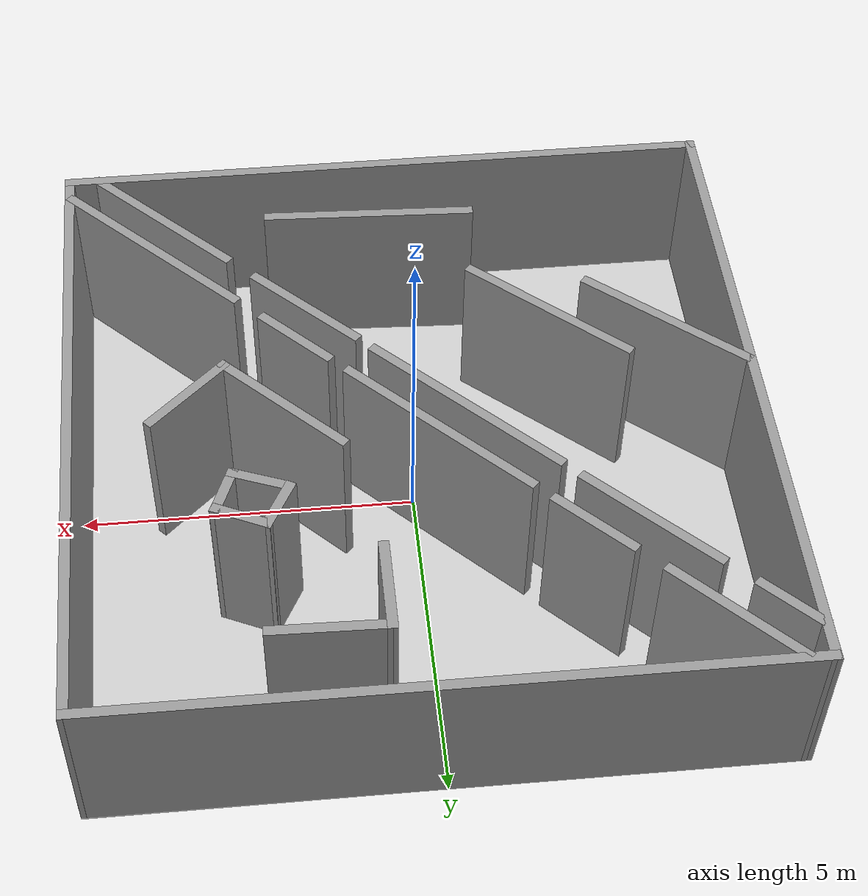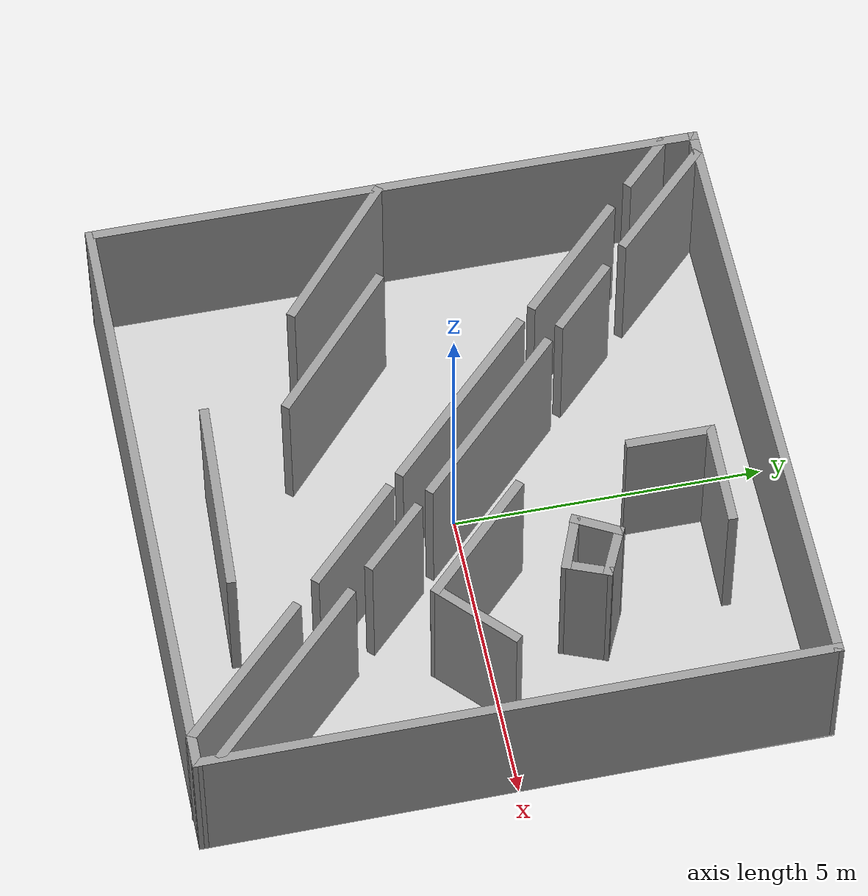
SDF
<sdf version="1.7">
 <world name="default">
  <light name="sun" type="directional">
   <pose>0 0 10 0 -0 0</pose>
   <diffuse>0.8 0.8 0.8 1</diffuse>
   <specular>0.2 0.2 0.2 1</specular>
   <attenuation>
    <range>1000</range>
    <constant>0.9</constant>
    <linear>0.01</linear>
    <quadratic>0.001</quadratic>
   </attenuation>
   <direction>-0.5 0.1 -0.9</direction>
   <spot><inner_angle>0</inner_angle><outer_angle>0</outer_angle><falloff>0</falloff></spot>
  </light>
  <gravity>0 0 -9.8</gravity>
  <magnetic_field>6e-06 2.3e-05 -4.2e-05</magnetic_field>
  <atmosphere type="adiabatic"/>
  <physics type="ode">
   <max_step_size>0.001</max_step_size>
   <real_time_factor>1</real_time_factor>
   <real_time_update_rate>1000</real_time_update_rate>
  </physics>
  <scene><ambient>0.4 0.4 0.4 1</ambient><background>0.7 0.7 0.7 1</background><shadows>1</shadows></scene>
  <spherical_coordinates>
   <surface_model>EARTH_WGS84</surface_model>
   <latitude_deg>0</latitude_deg>
   <longitude_deg>0</longitude_deg>
   <elevation>0</elevation>
   <heading_deg>0</heading_deg>
  </spherical_coordinates>
  <model name="map_2">
   <static>1</static>
   <link name="link">
    <collision name="collision">
     <geometry><plane><normal>0 0 1</normal><size>10 10</size></plane></geometry>
     <surface><friction><ode><mu>100</mu><mu2>50</mu2></ode></friction></surface>
    </collision>
    <visual name="visual">
     <cast_shadows>0</cast_shadows>
     <geometry><plane><normal>0 0 1</normal><size>10 10</size></plane></geometry>
     <material>
      <script>
       <uri>model://map_2/materials/scripts</uri>
       <uri>model://map_2/materials/textures/</uri>
       <name>Map2/Image</name>
      </script>
     </material>
    </visual>
   </link>
  </model>
  <model name="Untitled">
   <link name="Wall_0">
    <collision name="Wall_0_Collision">
     <geometry><box><size>10.0253 0.15 2.5</size></box></geometry>
     <pose>0 0 1.25 0 -0 0</pose>
    </collision>
    <visual name="Wall_0_Visual">
     <pose>0 0 1.25 0 -0 0</pose>
     <geometry><box><size>10.0253 0.15 2.5</size></box></geometry>
     <material>
      <script><uri>file://media/materials/scripts/gazebo.material</uri><name>Gazebo/Grey</name></script>
      <ambient>1 1 1 1</ambient>
     </material>
     <meta><layer>0</layer></meta>
    </visual>
    <pose>-0.018666 4.93416 0 0 -0 -0.002297</pose>
   </link>
   <link name="Wall_1">
    <collision name="Wall_1_Collision">
     <geometry><box><size>10.0027 0.15 2.5</size></box></geometry>
     <pose>0 0 1.25 0 -0 0</pose>
    </collision>
    <visual name="Wall_1_Visual">
     <pose>0 0 1.25 0 -0 0</pose>
     <geometry><box><size>10.0027 0.15 2.5</size></box></geometry>
     <material>
      <script><uri>file://media/materials/scripts/gazebo.material</uri><name>Gazebo/Grey</name></script>
      <ambient>1 1 1 1</ambient>
     </material>
     <meta><layer>0</layer></meta>
    </visual>
    <pose>4.94164 -0.003457 0 0 -0 -1.56619</pose>
   </link>
   <link name="Wall_11">
    <collision name="Wall_11_Collision">
     <geometry><box><size>1.42257 0.15 2.5</size></box></geometry>
     <pose>0 0 1.25 0 -0 0</pose>
    </collision>
    <visual name="Wall_11_Visual">
     <pose>0 0 1.25 0 -0 0</pose>
     <geometry><box><size>1.42257 0.15 2.5</size></box></geometry>
     <material>
      <script><uri>file://media/materials/scripts/gazebo.material</uri><name>Gazebo/Grey</name></script>
      <ambient>1 1 1 1</ambient>
     </material>
     <meta><layer>0</layer></meta>
    </visual>
    <pose>-2.21148 2.52584 0 0 -0 -0.776995</pose>
   </link>
   <link name="Wall_13">
    <collision name="Wall_13_Collision">
     <geometry><box><size>3.43297 0.15 2.5</size></box></geometry>
     <pose>0 0 1.25 0 -0 0</pose>
    </collision>
    <visual name="Wall_13_Visual">
     <pose>0 0 1.25 0 -0 0</pose>
     <geometry><box><size>3.43297 0.15 2.5</size></box></geometry>
     <material>
      <script><uri>file://media/materials/scripts/gazebo.material</uri><name>Gazebo/Grey</name></script>
      <ambient>1 1 1 1</ambient>
     </material>
     <meta><layer>0</layer></meta>
    </visual>
    <pose>-0.287097 0.616581 0 0 -0 -0.778884</pose>
   </link>
   <link name="Wall_15">
    <collision name="Wall_15_Collision">
     <geometry><box><size>3.49182 0.15 2.5</size></box></geometry>
     <pose>0 0 1.25 0 -0 0</pose>
    </collision>
    <visual name="Wall_15_Visual">
     <pose>0 0 1.25 0 -0 0</pose>
     <geometry><box><size>3.49182 0.15 2.5</size></box></geometry>
     <material>
      <script><uri>file://media/materials/scripts/gazebo.material</uri><name>Gazebo/Grey</name></script>
      <ambient>1 1 1 1</ambient>
     </material>
     <meta><layer>0</layer></meta>
    </visual>
    <pose>-0.710538 0.242289 0 0 -0 -0.777398</pose>
   </link>
   <link name="Wall_17">
    <collision name="Wall_17_Collision">
     <geometry><box><size>1.39044 0.15 2.5</size></box></geometry>
     <pose>0 0 1.25 0 -0 0</pose>
    </collision>
    <visual name="Wall_17_Visual">
     <pose>0 0 1.25 0 -0 0</pose>
     <geometry><box><size>1.39044 0.15 2.5</size></box></geometry>
     <material>
      <script><uri>file://media/materials/scripts/gazebo.material</uri><name>Gazebo/Grey</name></script>
      <ambient>1 1 1 1</ambient>
     </material>
     <meta><layer>0</layer></meta>
    </visual>
    <pose>1.62217 -1.27756 0 0 -0 -0.785398</pose>
   </link>
   <link name="Wall_19">
    <collision name="Wall_19_Collision">
     <geometry><box><size>2.08564 0.15 2.5</size></box></geometry>
     <pose>0 0 1.25 0 -0 0</pose>
    </collision>
    <visual name="Wall_19_Visual">
     <pose>0 0 1.25 0 -0 0</pose>
     <geometry><box><size>2.08564 0.15 2.5</size></box></geometry>
     <material>
      <script><uri>file://media/materials/scripts/gazebo.material</uri><name>Gazebo/Grey</name></script>
      <ambient>1 1 1 1</ambient>
     </material>
     <meta><layer>0</layer></meta>
    </visual>
    <pose>1.44447 -1.88626 0 0 -0 -0.774349</pose>
   </link>
   <link name="Wall_2">
    <collision name="Wall_2_Collision">
     <geometry><box><size>10.0479 0.15 2.5</size></box></geometry>
     <pose>0 0 1.25 0 -0 0</pose>
    </collision>
    <visual name="Wall_2_Visual">
     <pose>0 0 1.25 0 -0 0</pose>
     <geometry><box><size>10.0479 0.15 2.5</size></box></geometry>
     <material>
      <script><uri>file://media/materials/scripts/gazebo.material</uri><name>Gazebo/Grey</name></script>
      <ambient>1 1 1 1</ambient>
     </material>
     <meta><layer>0</layer></meta>
    </visual>
    <pose>0.01536 -4.92595 0 0 -0 3.14083</pose>
   </link>
   <link name="Wall_21">
    <collision name="Wall_21_Collision">
     <geometry><box><size>3.55591 0.15 2.5</size></box></geometry>
     <pose>0 0 1.25 0 -0 0</pose>
    </collision>
    <visual name="Wall_21_Visual">
     <pose>0 0 1.25 0 -0 0</pose>
     <geometry><box><size>3.55591 0.15 2.5</size></box></geometry>
     <material>
      <script><uri>file://media/materials/scripts/gazebo.material</uri><name>Gazebo/Grey</name></script>
      <ambient>1 1 1 1</ambient>
     </material>
     <meta><layer>0</layer></meta>
    </visual>
    <pose>3.70156 -3.33805 0 0 -0 -0.780689</pose>
   </link>
   <link name="Wall_23">
    <collision name="Wall_23_Collision">
     <geometry><box><size>2.86617 0.15 2.5</size></box></geometry>
     <pose>0 0 1.25 0 -0 0</pose>
    </collision>
    <visual name="Wall_23_Visual">
     <pose>0 0 1.25 0 -0 0</pose>
     <geometry><box><size>2.86617 0.15 2.5</size></box></geometry>
     <material>
      <script><uri>file://media/materials/scripts/gazebo.material</uri><name>Gazebo/Grey</name></script>
      <ambient>1 1 1 1</ambient>
     </material>
     <meta><layer>0</layer></meta>
    </visual>
    <pose>3.53899 -3.95809 0 0 -0 -0.781461</pose>
   </link>
   <link name="Wall_25">
    <collision name="Wall_25_Collision">
     <geometry><box><size>2.87053 0.15 2.5</size></box></geometry>
     <pose>0 0 1.25 0 -0 0</pose>
    </collision>
    <visual name="Wall_25_Visual">
     <pose>0 0 1.25 0 -0 0</pose>
     <geometry><box><size>2.87053 0.15 2.5</size></box></geometry>
     <material>
      <script><uri>file://media/materials/scripts/gazebo.material</uri><name>Gazebo/Grey</name></script>
      <ambient>1 1 1 1</ambient>
     </material>
     <meta><layer>0</layer></meta>
    </visual>
    <pose>-3.8561 -1.14901 0 0 -0 2.44081</pose>
   </link>
   <link name="Wall_27">
    <collision name="Wall_27_Collision">
     <geometry><box><size>2.92489 0.15 2.5</size></box></geometry>
     <pose>0 0 1.25 0 -0 0</pose>
    </collision>
    <visual name="Wall_27_Visual">
     <pose>0 0 1.25 0 -0 0</pose>
     <geometry><box><size>2.92489 0.15 2.5</size></box></geometry>
     <material>
      <script><uri>file://media/materials/scripts/gazebo.material</uri><name>Gazebo/Grey</name></script>
      <ambient>1 1 1 1</ambient>
     </material>
     <meta><layer>0</layer></meta>
    </visual>
    <pose>-2.15477 -1.50818 0 0 -0 2.41789</pose>
   </link>
   <link name="Wall_29">
    <collision name="Wall_29_Collision">
     <geometry><box><size>3.23807 0.15 2.5</size></box></geometry>
     <pose>0 0 1.25 0 -0 0</pose>
    </collision>
    <visual name="Wall_29_Visual">
     <pose>0 0 1.25 0 -0 0</pose>
     <geometry><box><size>3.23807 0.15 2.5</size></box></geometry>
     <material>
      <script><uri>file://media/materials/scripts/gazebo.material</uri><name>Gazebo/Grey</name></script>
      <ambient>1 1 1 1</ambient>
     </material>
     <meta><layer>0</layer></meta>
    </visual>
    <pose>0.336721 -3.79552 0 0 -0 -0.044089</pose>
   </link>
   <link name="Wall_3">
    <collision name="Wall_3_Collision">
     <geometry><box><size>10.0177 0.15 2.5</size></box></geometry>
     <pose>0 0 1.25 0 -0 0</pose>
    </collision>
    <visual name="Wall_3_Visual">
     <pose>0 0 1.25 0 -0 0</pose>
     <geometry><box><size>10.0177 0.15 2.5</size></box></geometry>
     <material>
      <script><uri>file://media/materials/scripts/gazebo.material</uri><name>Gazebo/Grey</name></script>
      <ambient>1 1 1 1</ambient>
     </material>
     <meta><layer>0</layer></meta>
    </visual>
    <pose>-4.94494 0.011666 0 0 -0 1.57309</pose>
   </link>
   <link name="Wall_31">
    <collision name="Wall_31_Collision">
     <geometry><box><size>2.41173 0.15 2.5</size></box></geometry>
     <pose>0 0 1.25 0 -0 0</pose>
    </collision>
    <visual name="Wall_31_Visual">
     <pose>0 0 1.25 0 -0 0</pose>
     <geometry><box><size>2.41173 0.15 2.5</size></box></geometry>
     <material>
      <script><uri>file://media/materials/scripts/gazebo.material</uri><name>Gazebo/Grey</name></script>
      <ambient>1 1 1 1</ambient>
     </material>
     <meta><layer>0</layer></meta>
    </visual>
    <pose>1.8906 -0.022361 0 0 -0 -0.778306</pose>
   </link>
   <link name="Wall_32">
    <collision name="Wall_32_Collision">
     <geometry><box><size>1.61045 0.15 2.5</size></box></geometry>
     <pose>0 0 1.25 0 -0 0</pose>
    </collision>
    <visual name="Wall_32_Visual">
     <pose>0 0 1.25 0 -0 0</pose>
     <geometry><box><size>1.61045 0.15 2.5</size></box></geometry>
     <material>
      <script><uri>file://media/materials/scripts/gazebo.material</uri><name>Gazebo/Grey</name></script>
      <ambient>1 1 1 1</ambient>
     </material>
     <meta><layer>0</layer></meta>
    </visual>
    <pose>3.22897 -0.317257 0 0 -0 0.752443</pose>
   </link>
   <link name="Wall_34">
    <collision name="Wall_34_Collision">
     <geometry><box><size>1.42788 0.15 2.5</size></box></geometry>
     <pose>0 0 1.25 0 -0 0</pose>
    </collision>
    <visual name="Wall_34_Visual">
     <pose>0 0 1.25 0 -0 0</pose>
     <geometry><box><size>1.42788 0.15 2.5</size></box></geometry>
     <material>
      <script><uri>file://media/materials/scripts/gazebo.material</uri><name>Gazebo/Grey</name></script>
      <ambient>1 1 1 1</ambient>
     </material>
     <meta><layer>0</layer></meta>
    </visual>
    <pose>0.669424 3.29333 0 0 -0 1.5708</pose>
   </link>
   <link name="Wall_35">
    <collision name="Wall_35_Collision">
     <geometry><box><size>1.76123 0.15 2.5</size></box></geometry>
     <pose>0 0 1.25 0 -0 0</pose>
    </collision>
    <visual name="Wall_35_Visual">
     <pose>0 0 1.25 0 -0 0</pose>
     <geometry><box><size>1.76123 0.15 2.5</size></box></geometry>
     <material>
      <script><uri>file://media/materials/scripts/gazebo.material</uri><name>Gazebo/Grey</name></script>
      <ambient>1 1 1 1</ambient>
     </material>
     <meta><layer>0</layer></meta>
    </visual>
    <pose>1.47472 3.91337 0 0 -0 -0.02347</pose>
   </link>
   <link name="Wall_37">
    <collision name="Wall_37_Collision">
     <geometry><box><size>0.853661 0.15 2.5</size></box></geometry>
     <pose>0 0 1.25 0 -0 0</pose>
    </collision>
    <visual name="Wall_37_Visual">
     <pose>0 0 1.25 0 -0 0</pose>
     <geometry><box><size>0.853661 0.15 2.5</size></box></geometry>
     <material>
      <script><uri>file://media/materials/scripts/gazebo.material</uri><name>Gazebo/Grey</name></script>
      <ambient>1 1 1 1</ambient>
     </material>
     <meta><layer>0</layer></meta>
    </visual>
    <pose>2.03804 1.82263 0 0 -0 1.07831</pose>
   </link>
   <link name="Wall_38">
    <collision name="Wall_38_Collision">
     <geometry><box><size>0.907843 0.15 2.5</size></box></geometry>
     <pose>0 0 1.25 0 -0 0</pose>
    </collision>
    <visual name="Wall_38_Visual">
     <pose>0 0 1.25 0 -0 0</pose>
     <geometry><box><size>0.907843 0.15 2.5</size></box></geometry>
     <material>
      <script><uri>file://media/materials/scripts/gazebo.material</uri><name>Gazebo/Grey</name></script>
      <ambient>1 1 1 1</ambient>
     </material>
     <meta><layer>0</layer></meta>
    </visual>
    <pose>2.54844 1.97386 0 0 -0 -0.432408</pose>
   </link>
   <link name="Wall_39">
    <collision name="Wall_39_Collision">
     <geometry><box><size>0.801513 0.15 2.5</size></box></geometry>
     <pose>0 0 1.25 0 -0 0</pose>
    </collision>
    <visual name="Wall_39_Visual">
     <pose>0 0 1.25 0 -0 0</pose>
     <geometry><box><size>0.801513 0.15 2.5</size></box></geometry>
     <material>
      <script><uri>file://media/materials/scripts/gazebo.material</uri><name>Gazebo/Grey</name></script>
      <ambient>1 1 1 1</ambient>
     </material>
     <meta><layer>0</layer></meta>
    </visual>
    <pose>2.7715 1.51261 0 0 -0 -1.9513</pose>
   </link>
   <link name="Wall_40">
    <collision name="Wall_40_Collision">
     <geometry><box><size>0.944779 0.15 2.5</size></box></geometry>
     <pose>0 0 1.25 0 -0 0</pose>
    </collision>
    <visual name="Wall_40_Visual">
     <pose>0 0 1.25 0 -0 0</pose>
     <geometry><box><size>0.944779 0.15 2.5</size></box></geometry>
     <material>
      <script><uri>file://media/materials/scripts/gazebo.material</uri><name>Gazebo/Grey</name></script>
      <ambient>1 1 1 1</ambient>
     </material>
     <meta><layer>0</layer></meta>
    </visual>
    <pose>2.28001 1.35382 0 0 -0 2.77169</pose>
   </link>
   <link name="Wall_5">
    <collision name="Wall_5_Collision">
     <geometry><box><size>2.278 0.15 2.5</size></box></geometry>
     <pose>0 0 1.25 0 -0 0</pose>
    </collision>
    <visual name="Wall_5_Visual">
     <pose>0 0 1.25 0 -0 0</pose>
     <geometry><box><size>2.278 0.15 2.5</size></box></geometry>
     <material>
      <script><uri>file://media/materials/scripts/gazebo.material</uri><name>Gazebo/Grey</name></script>
      <ambient>1 1 1 1</ambient>
     </material>
     <meta><layer>0</layer></meta>
    </visual>
    <pose>-3.84097 4.14777 0 0 -0 2.35619</pose>
   </link>
   <link name="Wall_7">
    <collision name="Wall_7_Collision">
     <geometry><box><size>1.11777 0.15 2.5</size></box></geometry>
     <pose>0 0 1.25 0 -0 0</pose>
    </collision>
    <visual name="Wall_7_Visual">
     <pose>0 0 1.25 0 -0 0</pose>
     <geometry><box><size>1.11777 0.15 2.5</size></box></geometry>
     <material>
      <script><uri>file://media/materials/scripts/gazebo.material</uri><name>Gazebo/Grey</name></script>
      <ambient>1 1 1 1</ambient>
     </material>
     <meta><layer>0</layer></meta>
    </visual>
    <pose>-4.58955 4.07594 0 0 -0 2.36172</pose>
   </link>
   <link name="Wall_9">
    <collision name="Wall_9_Collision">
     <geometry><box><size>2.39573 0.15 2.5</size></box></geometry>
     <pose>0 0 1.25 0 -0 0</pose>
    </collision>
    <visual name="Wall_9_Visual">
     <pose>0 0 1.25 0 -0 0</pose>
     <geometry><box><size>2.39573 0.15 2.5</size></box></geometry>
     <material>
      <script><uri>file://media/materials/scripts/gazebo.material</uri><name>Gazebo/Grey</name></script>
      <ambient>1 1 1 1</ambient>
     </material>
     <meta><layer>0</layer></meta>
    </visual>
    <pose>-2.99787 2.51072 0 0 -0 -0.775875</pose>
   </link>
   <static>1</static>
  </model>
 </world>
</sdf>
